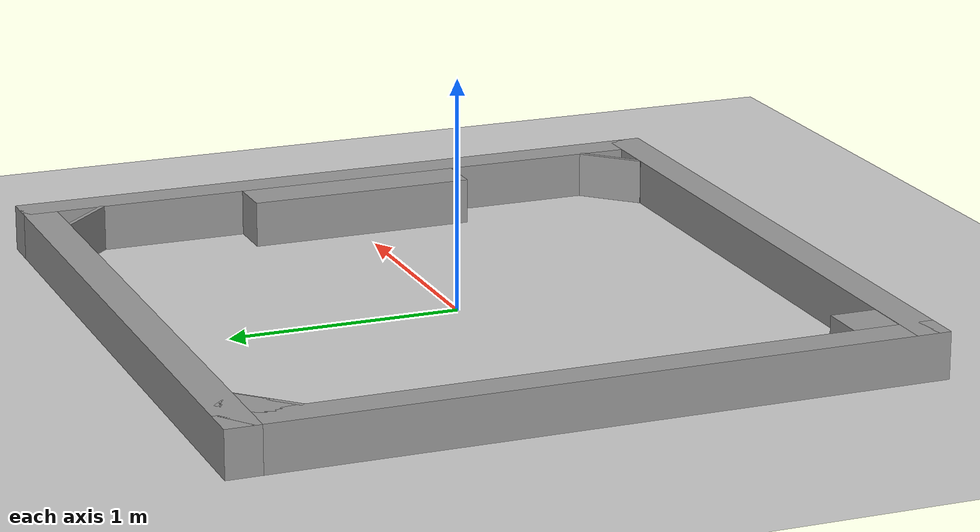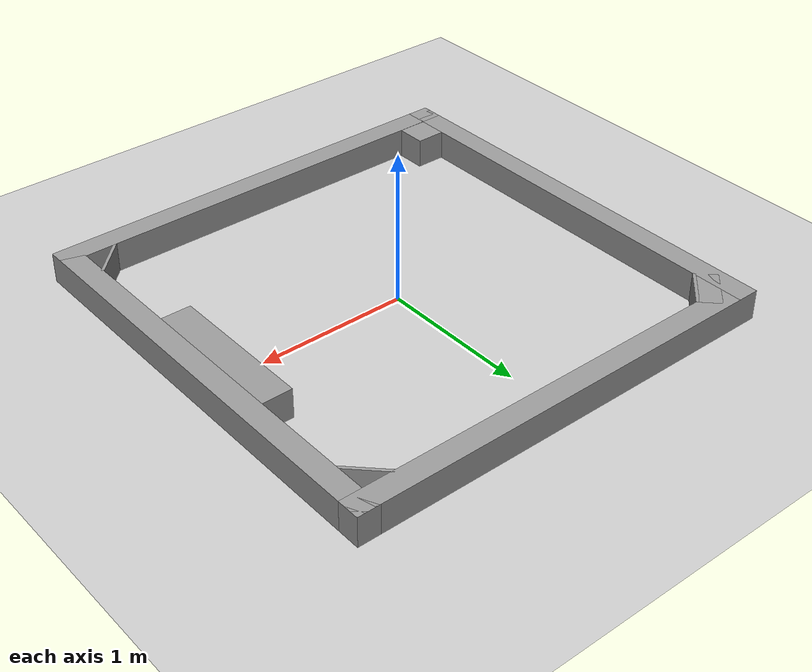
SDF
<sdf version="1.6">
 <world name="default">
  <light name="sun" type="directional">
   <pose>0 0 10 0 -0 0</pose>
   <diffuse>0.8 0.8 0.8 1</diffuse>
   <specular>0.1 0.1 0.1 1</specular>
   <attenuation>
    <range>1000</range>
    <constant>0.9</constant>
    <linear>0.01</linear>
    <quadratic>0.001</quadratic>
   </attenuation>
   <direction>-0.5 0.5 -1</direction>
  </light>
  <model name="ground_plane">
   <static>1</static>
   <link name="ground_plane::link">
    <collision name="collision">
     <geometry><plane><normal>0 0 1</normal><size>100 100</size></plane></geometry>
     <surface><friction><ode><mu>100</mu><mu2>50</mu2></ode></friction></surface>
    </collision>
    <visual name="visual">
     <cast_shadows>0</cast_shadows>
     <geometry><plane><normal>0 0 1</normal><size>100 100</size></plane></geometry>
     <material>
      <script><uri>file://media/materials/scripts/gazebo.material</uri><name>Gazebo/Grey</name></script>
     </material>
    </visual>
   </link>
  </model>
  <gravity>0 0 -9.8</gravity>
  <magnetic_field>6e-06 2.3e-05 -4.2e-05</magnetic_field>
  <atmosphere type="adiabatic"/>
  <physics name="default_physics" default="0" type="ode">
   <max_step_size>0.001</max_step_size>
   <real_time_factor>1</real_time_factor>
   <real_time_update_rate>1000</real_time_update_rate>
  </physics>
  <scene><ambient>0.4 0.4 0.4 1</ambient><background>0.7 0.7 0.7 1</background><shadows>1</shadows></scene>
  <spherical_coordinates>
   <surface_model>EARTH_WGS84</surface_model>
   <latitude_deg>0</latitude_deg>
   <longitude_deg>0</longitude_deg>
   <elevation>0</elevation>
   <heading_deg>0</heading_deg>
  </spherical_coordinates>
  <model name="stand_0">
   <link name="link_2">
    <inertial>
     <mass>1</mass>
     <inertia>
      <ixx>0.166667</ixx>
      <ixy>0</ixy>
      <ixz>0</ixz>
      <iyy>0.166667</iyy>
      <iyz>0</iyz>
      <izz>0.166667</izz>
     </inertia>
    </inertial>
    <kinematic>1</kinematic>
    <visual name="visual">
     <geometry><box><size>0.2 1 0.2</size></box></geometry>
     <material>
      <lighting>1</lighting>
      <script><uri>file://media/materials/scripts/gazebo.material</uri><name>Gazebo/Grey</name></script>
      <ambient>0.3 0.3 0.3 1</ambient>
      <diffuse>0.7 0.7 0.7 1</diffuse>
      <specular>0.01 0.01 0.01 1</specular>
      <emissive>0 0 0 1</emissive>
      <shader type="vertex"><normal_map>__default__</normal_map></shader>
     </material>
    </visual>
    <collision name="collision">
     <geometry><box><size>0.2 1 0.2</size></box></geometry>
     <surface>
      <friction>
       <ode><mu>1</mu><mu2>1</mu2><fdir1>0 0 0</fdir1><slip1>0</slip1><slip2>0</slip2></ode>
       <torsional>
        <coefficient>1</coefficient>
        <patch_radius>0</patch_radius>
        <surface_radius>0</surface_radius>
        <use_patch_radius>1</use_patch_radius>
        <ode><slip>0</slip></ode>
       </torsional>
      </friction>
      <bounce><restitution_coefficient>0</restitution_coefficient><threshold>1e+06</threshold></bounce>
      <contact>
       <collide_without_contact>0</collide_without_contact>
       <collide_without_contact_bitmask>1</collide_without_contact_bitmask>
       <collide_bitmask>1</collide_bitmask>
       <ode>
        <soft_cfm>0</soft_cfm>
        <soft_erp>0.2</soft_erp>
        <kp>1e+13</kp>
        <kd>1</kd>
        <max_vel>0.01</max_vel>
        <min_depth>0</min_depth>
       </ode>
       <bullet>
        <split_impulse>1</split_impulse>
        <split_impulse_penetration_threshold>-0.01</split_impulse_penetration_threshold>
        <soft_cfm>0</soft_cfm>
        <soft_erp>0.2</soft_erp>
        <kp>1e+13</kp>
        <kd>1</kd>
       </bullet>
      </contact>
     </surface>
    </collision>
   </link>
   <static>0</static>
   <pose>1.25 -1e-06 0.1 0 -0 1e-06</pose>
  </model>
  <model name="unit_box_4">
   <link name="link">
    <inertial>
     <mass>1</mass>
     <inertia>
      <ixx>0.166667</ixx>
      <ixy>0</ixy>
      <ixz>0</ixz>
      <iyy>0.166667</iyy>
      <iyz>0</iyz>
      <izz>0.166667</izz>
     </inertia>
    </inertial>
    <visual name="visual">
     <geometry><box><size>0.2 0.2 0.2</size></box></geometry>
     <material>
      <script><name>Gazebo/Grey</name><uri>file://media/materials/scripts/gazebo.material</uri></script>
      <ambient>0.3 0.3 0.3 1</ambient>
      <diffuse>0.7 0.7 0.7 1</diffuse>
      <specular>0.01 0.01 0.01 1</specular>
      <emissive>0 0 0 1</emissive>
      <shader type="vertex"><normal_map>__default__</normal_map></shader>
     </material>
    </visual>
    <collision name="collision">
     <geometry><box><size>0.2 0.2 0.2</size></box></geometry>
     <surface>
      <friction>
       <ode><mu>1</mu><mu2>1</mu2><fdir1>0 0 0</fdir1><slip1>0</slip1><slip2>0</slip2></ode>
       <torsional>
        <coefficient>1</coefficient>
        <patch_radius>0</patch_radius>
        <surface_radius>0</surface_radius>
        <use_patch_radius>1</use_patch_radius>
        <ode><slip>0</slip></ode>
       </torsional>
      </friction>
      <bounce><restitution_coefficient>0</restitution_coefficient><threshold>1e+06</threshold></bounce>
      <contact>
       <collide_without_contact>0</collide_without_contact>
       <collide_without_contact_bitmask>1</collide_without_contact_bitmask>
       <collide_bitmask>1</collide_bitmask>
       <ode>
        <soft_cfm>0</soft_cfm>
        <soft_erp>0.2</soft_erp>
        <kp>1e+13</kp>
        <kd>1</kd>
        <max_vel>0.01</max_vel>
        <min_depth>0</min_depth>
       </ode>
       <bullet>
        <split_impulse>1</split_impulse>
        <split_impulse_penetration_threshold>-0.01</split_impulse_penetration_threshold>
        <soft_cfm>0</soft_cfm>
        <soft_erp>0.2</soft_erp>
        <kp>1e+13</kp>
        <kd>1</kd>
       </bullet>
      </contact>
     </surface>
    </collision>
   </link>
   <static>0</static>
   <pose>-1.25 -1.24774 0.099999 5e-06 2e-06 0</pose>
  </model>
  <model name="competition_room_0">
   <link name="Wall_1">
    <pose>1.925 0 0 0 -0 1.5708</pose>
    <inertial>
     <mass>1</mass>
     <inertia><ixx>1</ixx><ixy>0</ixy><ixz>0</ixz><iyy>1</iyy><iyz>0</iyz><izz>1</izz></inertia>
    </inertial>
    <visual name="Wall_1_Visual">
     <pose>0 0.5 0.1 0 -0 0</pose>
     <geometry><box><size>3 0.15 0.2</size></box></geometry>
     <material>
      <script><uri>file://media/materials/scripts/gazebo.material</uri><name>Gazebo/Grey</name></script>
      <ambient>0 0 0 1</ambient>
      <diffuse>0.7 0.7 0.7 1</diffuse>
      <specular>0.01 0.01 0.01 1</specular>
      <emissive>0 0 0 1</emissive>
      <shader type="vertex"><normal_map>__default__</normal_map></shader>
     </material>
    </visual>
    <collision name="Wall_1_Collision">
     <pose>0 0.5 0.1 0 -0 0</pose>
     <geometry><box><size>3 0.15 0.2</size></box></geometry>
     <surface>
      <friction>
       <ode><mu>1</mu><mu2>1</mu2><fdir1>0 0 0</fdir1><slip1>0</slip1><slip2>0</slip2></ode>
       <torsional>
        <coefficient>1</coefficient>
        <patch_radius>0</patch_radius>
        <surface_radius>0</surface_radius>
        <use_patch_radius>1</use_patch_radius>
        <ode><slip>0</slip></ode>
       </torsional>
      </friction>
      <bounce><restitution_coefficient>0</restitution_coefficient><threshold>1e+06</threshold></bounce>
      <contact>
       <collide_without_contact>0</collide_without_contact>
       <collide_without_contact_bitmask>1</collide_without_contact_bitmask>
       <collide_bitmask>1</collide_bitmask>
       <ode>
        <soft_cfm>0</soft_cfm>
        <soft_erp>0.2</soft_erp>
        <kp>1e+13</kp>
        <kd>1</kd>
        <max_vel>0.01</max_vel>
        <min_depth>0</min_depth>
       </ode>
       <bullet>
        <split_impulse>1</split_impulse>
        <split_impulse_penetration_threshold>-0.01</split_impulse_penetration_threshold>
        <soft_cfm>0</soft_cfm>
        <soft_erp>0.2</soft_erp>
        <kp>1e+13</kp>
        <kd>1</kd>
       </bullet>
      </contact>
     </surface>
    </collision>
   </link>
   <link name="Wall_2">
    <pose>0 1.925 0 0 -0 3.14159</pose>
    <inertial>
     <mass>1</mass>
     <inertia><ixx>1</ixx><ixy>0</ixy><ixz>0</ixz><iyy>1</iyy><iyz>0</iyz><izz>1</izz></inertia>
    </inertial>
    <visual name="Wall_2_Visual">
     <pose>0 0.5 0.1 0 -0 0</pose>
     <geometry><box><size>3 0.15 0.2</size></box></geometry>
     <material>
      <script><uri>file://media/materials/scripts/gazebo.material</uri><name>Gazebo/Grey</name></script>
      <ambient>0 0 0 1</ambient>
      <diffuse>0.7 0.7 0.7 1</diffuse>
      <specular>0.01 0.01 0.01 1</specular>
      <emissive>0 0 0 1</emissive>
      <shader type="vertex"><normal_map>__default__</normal_map></shader>
     </material>
    </visual>
    <collision name="Wall_2_Collision">
     <pose>0 0.5 0.1 0 -0 0</pose>
     <geometry><box><size>3 0.15 0.2</size></box></geometry>
     <surface>
      <friction>
       <ode><mu>1</mu><mu2>1</mu2><fdir1>0 0 0</fdir1><slip1>0</slip1><slip2>0</slip2></ode>
       <torsional>
        <coefficient>1</coefficient>
        <patch_radius>0</patch_radius>
        <surface_radius>0</surface_radius>
        <use_patch_radius>1</use_patch_radius>
        <ode><slip>0</slip></ode>
       </torsional>
      </friction>
      <bounce><restitution_coefficient>0</restitution_coefficient><threshold>1e+06</threshold></bounce>
      <contact>
       <collide_without_contact>0</collide_without_contact>
       <collide_without_contact_bitmask>1</collide_without_contact_bitmask>
       <collide_bitmask>1</collide_bitmask>
       <ode>
        <soft_cfm>0</soft_cfm>
        <soft_erp>0.2</soft_erp>
        <kp>1e+13</kp>
        <kd>1</kd>
        <max_vel>0.01</max_vel>
        <min_depth>0</min_depth>
       </ode>
       <bullet>
        <split_impulse>1</split_impulse>
        <split_impulse_penetration_threshold>-0.01</split_impulse_penetration_threshold>
        <soft_cfm>0</soft_cfm>
        <soft_erp>0.2</soft_erp>
        <kp>1e+13</kp>
        <kd>1</kd>
       </bullet>
      </contact>
     </surface>
    </collision>
   </link>
   <link name="Wall_3">
    <pose>-1.925 0 0 0 0 -1.5708</pose>
    <inertial>
     <mass>1</mass>
     <inertia><ixx>1</ixx><ixy>0</ixy><ixz>0</ixz><iyy>1</iyy><iyz>0</iyz><izz>1</izz></inertia>
    </inertial>
    <visual name="Wall_3_Visual">
     <pose>0 0.5 0.1 0 -0 0</pose>
     <geometry><box><size>3 0.15 0.2</size></box></geometry>
     <material>
      <script><uri>file://media/materials/scripts/gazebo.material</uri><name>Gazebo/Grey</name></script>
      <ambient>0 0 0 1</ambient>
      <diffuse>0.7 0.7 0.7 1</diffuse>
      <specular>0.01 0.01 0.01 1</specular>
      <emissive>0 0 0 1</emissive>
      <shader type="vertex"><normal_map>__default__</normal_map></shader>
     </material>
    </visual>
    <collision name="Wall_3_Collision">
     <pose>0 0.5 0.1 0 -0 0</pose>
     <geometry><box><size>3 0.15 0.2</size></box></geometry>
     <surface>
      <friction>
       <ode><mu>1</mu><mu2>1</mu2><fdir1>0 0 0</fdir1><slip1>0</slip1><slip2>0</slip2></ode>
       <torsional>
        <coefficient>1</coefficient>
        <patch_radius>0</patch_radius>
        <surface_radius>0</surface_radius>
        <use_patch_radius>1</use_patch_radius>
        <ode><slip>0</slip></ode>
       </torsional>
      </friction>
      <bounce><restitution_coefficient>0</restitution_coefficient><threshold>1e+06</threshold></bounce>
      <contact>
       <collide_without_contact>0</collide_without_contact>
       <collide_without_contact_bitmask>1</collide_without_contact_bitmask>
       <collide_bitmask>1</collide_bitmask>
       <ode>
        <soft_cfm>0</soft_cfm>
        <soft_erp>0.2</soft_erp>
        <kp>1e+13</kp>
        <kd>1</kd>
        <max_vel>0.01</max_vel>
        <min_depth>0</min_depth>
       </ode>
       <bullet>
        <split_impulse>1</split_impulse>
        <split_impulse_penetration_threshold>-0.01</split_impulse_penetration_threshold>
        <soft_cfm>0</soft_cfm>
        <soft_erp>0.2</soft_erp>
        <kp>1e+13</kp>
        <kd>1</kd>
       </bullet>
      </contact>
     </surface>
    </collision>
   </link>
   <link name="Wall_4">
    <pose>0 -1.925 0 0 -0 0</pose>
    <inertial>
     <mass>1</mass>
     <inertia><ixx>1</ixx><ixy>0</ixy><ixz>0</ixz><iyy>1</iyy><iyz>0</iyz><izz>1</izz></inertia>
    </inertial>
    <visual name="Wall_4_Visual">
     <pose>0 0.5 0.1 0 -0 0</pose>
     <geometry><box><size>3 0.15 0.2</size></box></geometry>
     <material>
      <script><uri>file://media/materials/scripts/gazebo.material</uri><name>Gazebo/Grey</name></script>
      <ambient>0 0 0 1</ambient>
      <diffuse>0.7 0.7 0.7 1</diffuse>
      <specular>0.01 0.01 0.01 1</specular>
      <emissive>0 0 0 1</emissive>
      <shader type="vertex"><normal_map>__default__</normal_map></shader>
     </material>
    </visual>
    <collision name="Wall_4_Collision">
     <pose>0 0.5 0.1 0 -0 0</pose>
     <geometry><box><size>3 0.15 0.2</size></box></geometry>
     <surface>
      <friction>
       <ode><mu>1</mu><mu2>1</mu2><fdir1>0 0 0</fdir1><slip1>0</slip1><slip2>0</slip2></ode>
       <torsional>
        <coefficient>1</coefficient>
        <patch_radius>0</patch_radius>
        <surface_radius>0</surface_radius>
        <use_patch_radius>1</use_patch_radius>
        <ode><slip>0</slip></ode>
       </torsional>
      </friction>
      <bounce><restitution_coefficient>0</restitution_coefficient><threshold>1e+06</threshold></bounce>
      <contact>
       <collide_without_contact>0</collide_without_contact>
       <collide_without_contact_bitmask>1</collide_without_contact_bitmask>
       <collide_bitmask>1</collide_bitmask>
       <ode>
        <soft_cfm>0</soft_cfm>
        <soft_erp>0.2</soft_erp>
        <kp>1e+13</kp>
        <kd>1</kd>
        <max_vel>0.01</max_vel>
        <min_depth>0</min_depth>
       </ode>
       <bullet>
        <split_impulse>1</split_impulse>
        <split_impulse_penetration_threshold>-0.01</split_impulse_penetration_threshold>
        <soft_cfm>0</soft_cfm>
        <soft_erp>0.2</soft_erp>
        <kp>1e+13</kp>
        <kd>1</kd>
       </bullet>
      </contact>
     </surface>
    </collision>
   </link>
   <static>1</static>
  </model>
  <model name="unit_box_1">
   <link name="unit_box_1::unit_box_1::link">
    <inertial>
     <mass>1</mass>
     <inertia>
      <ixx>0.166667</ixx>
      <ixy>0</ixy>
      <ixz>0</ixz>
      <iyy>0.166667</iyy>
      <iyz>0</iyz>
      <izz>0.166667</izz>
     </inertia>
    </inertial>
    <kinematic>1</kinematic>
    <visual name="visual">
     <geometry><box><size>0.02 0.3 0.2</size></box></geometry>
     <material>
      <script><name>Gazebo/Grey</name><uri>file://media/materials/scripts/gazebo.material</uri></script>
      <ambient>0.3 0.3 0.3 1</ambient>
      <diffuse>0.7 0.7 0.7 1</diffuse>
      <specular>0.01 0.01 0.01 1</specular>
      <emissive>0 0 0 1</emissive>
      <shader type="vertex"><normal_map>__default__</normal_map></shader>
     </material>
     <pose>0 0 0 0 -0 0.7854</pose>
    </visual>
    <collision name="collision">
     <pose>0 0 0 0 -0 0.7854</pose>
     <geometry><box><size>0.02 0.3 0.2</size></box></geometry>
     <surface>
      <friction>
       <ode><mu>1</mu><mu2>1</mu2><fdir1>0 0 0</fdir1><slip1>0</slip1><slip2>0</slip2></ode>
       <torsional>
        <coefficient>1</coefficient>
        <patch_radius>0</patch_radius>
        <surface_radius>0</surface_radius>
        <use_patch_radius>1</use_patch_radius>
        <ode><slip>0</slip></ode>
       </torsional>
      </friction>
      <bounce><restitution_coefficient>0</restitution_coefficient><threshold>1e+06</threshold></bounce>
      <contact>
       <collide_without_contact>0</collide_without_contact>
       <collide_without_contact_bitmask>1</collide_without_contact_bitmask>
       <collide_bitmask>1</collide_bitmask>
       <ode>
        <soft_cfm>0</soft_cfm>
        <soft_erp>0.2</soft_erp>
        <kp>1e+13</kp>
        <kd>1</kd>
        <max_vel>0.01</max_vel>
        <min_depth>0</min_depth>
       </ode>
       <bullet>
        <split_impulse>1</split_impulse>
        <split_impulse_penetration_threshold>-0.01</split_impulse_penetration_threshold>
        <soft_cfm>0</soft_cfm>
        <soft_erp>0.2</soft_erp>
        <kp>1e+13</kp>
        <kd>1</kd>
       </bullet>
      </contact>
     </surface>
    </collision>
   </link>
   <static>0</static>
   <pose>1.25 1.25 0.1 0 -0 0</pose>
  </model>
  <model name="unit_box_3">
   <link name="unit_box_1::unit_box_1::link">
    <inertial>
     <mass>1</mass>
     <inertia>
      <ixx>0.166667</ixx>
      <ixy>0</ixy>
      <ixz>0</ixz>
      <iyy>0.166667</iyy>
      <iyz>0</iyz>
      <izz>0.166667</izz>
     </inertia>
    </inertial>
    <kinematic>1</kinematic>
    <visual name="ModelPreview_9::unit_box_1::unit_box_1::link::visual_1">
     <geometry><box><size>0.15 0.3 0.02</size></box></geometry>
     <material>
      <script><name>Gazebo/Grey</name><uri>file://media/materials/scripts/gazebo.material</uri></script>
      <ambient>0.3 0.3 0.3 1</ambient>
      <diffuse>0.7 0.7 0.7 1</diffuse>
      <specular>0.01 0.01 0.01 1</specular>
      <emissive>0 0 0 1</emissive>
      <shader type="vertex"><normal_map>__default__</normal_map></shader>
     </material>
     <pose>-0.05 -0.05 0.09 0 -0 0.7854</pose>
    </visual>
    <visual name="visual">
     <geometry><box><size>0.02 0.3 0.2</size></box></geometry>
     <material>
      <script><name>Gazebo/Grey</name><uri>file://media/materials/scripts/gazebo.material</uri></script>
      <ambient>0.3 0.3 0.3 1</ambient>
      <diffuse>0.7 0.7 0.7 1</diffuse>
      <specular>0.01 0.01 0.01 1</specular>
      <emissive>0 0 0 1</emissive>
      <shader type="vertex"><normal_map>__default__</normal_map></shader>
     </material>
     <pose>0 0 0 0 -0 0.7854</pose>
    </visual>
    <collision name="collision_1">
     <pose>-0.05 -0.05 0.09 0 -0 0.7854</pose>
     <geometry><box><size>0.15 0.3 0.02</size></box></geometry>
     <surface>
      <friction>
       <ode><mu>1</mu><mu2>1</mu2><fdir1>0 0 0</fdir1><slip1>0</slip1><slip2>0</slip2></ode>
       <torsional>
        <coefficient>1</coefficient>
        <patch_radius>0</patch_radius>
        <surface_radius>0</surface_radius>
        <use_patch_radius>1</use_patch_radius>
        <ode><slip>0</slip></ode>
       </torsional>
      </friction>
      <bounce><restitution_coefficient>0</restitution_coefficient><threshold>1e+06</threshold></bounce>
      <contact>
       <collide_without_contact>0</collide_without_contact>
       <collide_without_contact_bitmask>1</collide_without_contact_bitmask>
       <collide_bitmask>1</collide_bitmask>
       <ode>
        <soft_cfm>0</soft_cfm>
        <soft_erp>0.2</soft_erp>
        <kp>1e+13</kp>
        <kd>1</kd>
        <max_vel>0.01</max_vel>
        <min_depth>0</min_depth>
       </ode>
       <bullet>
        <split_impulse>1</split_impulse>
        <split_impulse_penetration_threshold>-0.01</split_impulse_penetration_threshold>
        <soft_cfm>0</soft_cfm>
        <soft_erp>0.2</soft_erp>
        <kp>1e+13</kp>
        <kd>1</kd>
       </bullet>
      </contact>
     </surface>
    </collision>
    <collision name="collision">
     <pose>0 0 0 0 -0 0.7854</pose>
     <geometry><box><size>0.02 0.3 0.2</size></box></geometry>
     <surface>
      <friction>
       <ode><mu>1</mu><mu2>1</mu2><fdir1>0 0 0</fdir1><slip1>0</slip1><slip2>0</slip2></ode>
       <torsional>
        <coefficient>1</coefficient>
        <patch_radius>0</patch_radius>
        <surface_radius>0</surface_radius>
        <use_patch_radius>1</use_patch_radius>
        <ode><slip>0</slip></ode>
       </torsional>
      </friction>
      <bounce><restitution_coefficient>0</restitution_coefficient><threshold>1e+06</threshold></bounce>
      <contact>
       <collide_without_contact>0</collide_without_contact>
       <collide_without_contact_bitmask>1</collide_without_contact_bitmask>
       <collide_bitmask>1</collide_bitmask>
       <ode>
        <soft_cfm>0</soft_cfm>
        <soft_erp>0.2</soft_erp>
        <kp>1e+13</kp>
        <kd>1</kd>
        <max_vel>0.01</max_vel>
        <min_depth>0</min_depth>
       </ode>
       <bullet>
        <split_impulse>1</split_impulse>
        <split_impulse_penetration_threshold>-0.01</split_impulse_penetration_threshold>
        <soft_cfm>0</soft_cfm>
        <soft_erp>0.2</soft_erp>
        <kp>1e+13</kp>
        <kd>1</kd>
       </bullet>
      </contact>
     </surface>
    </collision>
   </link>
   <static>0</static>
   <pose>-1.25 1.25 0.1 0 0 -1.5708</pose>
  </model>
  <model name="unit_box_2">
   <link name="unit_box_1::unit_box_1::link">
    <inertial>
     <mass>1</mass>
     <inertia>
      <ixx>0.166667</ixx>
      <ixy>0</ixy>
      <ixz>0</ixz>
      <iyy>0.166667</iyy>
      <iyz>0</iyz>
      <izz>0.166667</izz>
     </inertia>
    </inertial>
    <kinematic>1</kinematic>
    <visual name="visual">
     <geometry><box><size>0.02 0.3 0.2</size></box></geometry>
     <material>
      <script><name>Gazebo/Grey</name><uri>file://media/materials/scripts/gazebo.material</uri></script>
      <ambient>0.3 0.3 0.3 1</ambient>
      <diffuse>0.7 0.7 0.7 1</diffuse>
      <specular>0.01 0.01 0.01 1</specular>
      <emissive>0 0 0 1</emissive>
      <shader type="vertex"><normal_map>__default__</normal_map></shader>
     </material>
     <pose>0 0 0 0 -0 0.7854</pose>
    </visual>
    <collision name="collision">
     <pose>0 0 0 0 -0 0.7854</pose>
     <geometry><box><size>0.02 0.3 0.2</size></box></geometry>
     <surface>
      <friction>
       <ode><mu>1</mu><mu2>1</mu2><fdir1>0 0 0</fdir1><slip1>0</slip1><slip2>0</slip2></ode>
       <torsional>
        <coefficient>1</coefficient>
        <patch_radius>0</patch_radius>
        <surface_radius>0</surface_radius>
        <use_patch_radius>1</use_patch_radius>
        <ode><slip>0</slip></ode>
       </torsional>
      </friction>
      <bounce><restitution_coefficient>0</restitution_coefficient><threshold>1e+06</threshold></bounce>
      <contact>
       <collide_without_contact>0</collide_without_contact>
       <collide_without_contact_bitmask>1</collide_without_contact_bitmask>
       <collide_bitmask>1</collide_bitmask>
       <ode>
        <soft_cfm>0</soft_cfm>
        <soft_erp>0.2</soft_erp>
        <kp>1e+13</kp>
        <kd>1</kd>
        <max_vel>0.01</max_vel>
        <min_depth>0</min_depth>
       </ode>
       <bullet>
        <split_impulse>1</split_impulse>
        <split_impulse_penetration_threshold>-0.01</split_impulse_penetration_threshold>
        <soft_cfm>0</soft_cfm>
        <soft_erp>0.2</soft_erp>
        <kp>1e+13</kp>
        <kd>1</kd>
       </bullet>
      </contact>
     </surface>
    </collision>
   </link>
   <static>0</static>
   <pose>1.25 -1.25 0.1 0 -0 1.5708</pose>
  </model>
 </world>
</sdf>
